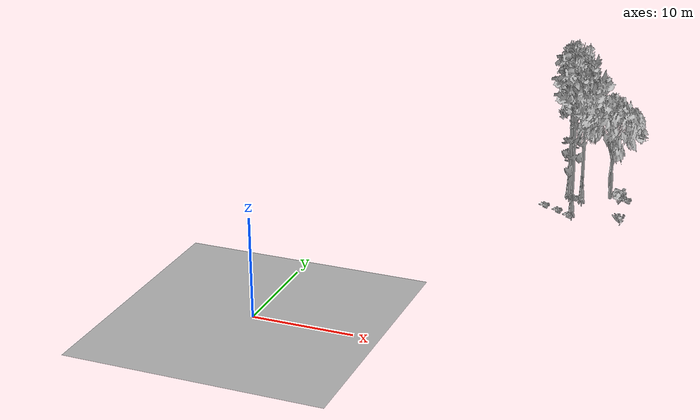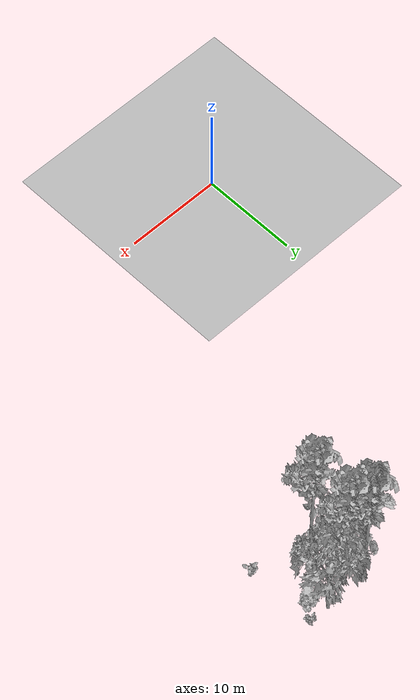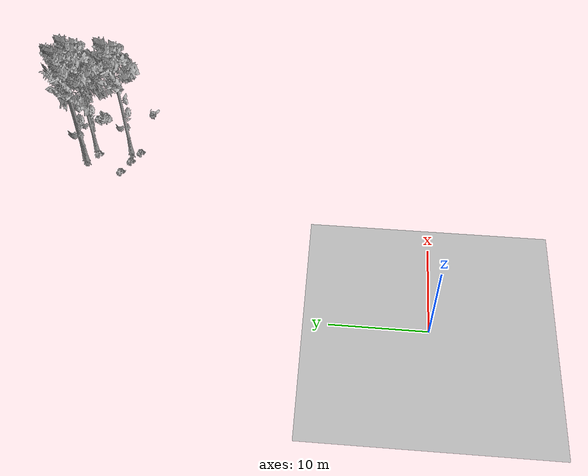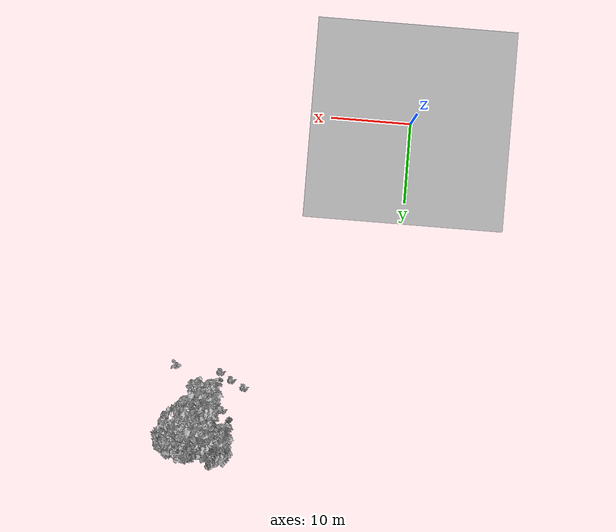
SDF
<sdf version="1.7">
 <world name="default">
  <model name="ground_plane">
   <static>1</static>
   <link name="link">
    <collision name="collision">
     <pose>-50 0 0 0 -0 0</pose>
     <geometry><plane><normal>0 0 1</normal><size>80 80</size></plane></geometry>
     <surface><contact><ode><min_depth>0.01</min_depth><max_vel>0</max_vel></ode></contact></surface>
    </collision>
    <visual name="grass">
     <cast_shadows>0</cast_shadows>
     <geometry>
      <mesh>
       <scale>0.46714285714285714 0.46714285714285714 0.1</scale>
       <uri>file://grass_plane/meshes/grass_plane.dae</uri>
      </mesh>
     </geometry>
    </visual>
   </link>
  </model>
  <model name="Tree 23">
   <static>1</static>
   <pose>24.29537606938836 39.25126462083037 0 1.57079 -0 0</pose>
   <link name="link">
    <collision name="collision">
     <geometry><mesh><scale>3.5 5 3.5</scale><uri>model://tree_2/meshes/tree_2.obj</uri></mesh></geometry>
    </collision>
    <visual name="visual">
     <geometry><mesh><scale>3.5 5 3.5</scale><uri>model://tree_2/meshes/tree_2.obj</uri></mesh></geometry>
    </visual>
   </link>
  </model>
  <model name="Tree 184">
   <static>1</static>
   <pose>21.432016057616764 38.21644859500114 0 1.57079 -0 0</pose>
   <link name="link">
    <collision name="collision">
     <geometry><mesh><scale>3.5 5 3.5</scale><uri>model://tree_9/meshes/tree_9.obj</uri></mesh></geometry>
    </collision>
    <visual name="visual">
     <geometry><mesh><scale>3.5 5 3.5</scale><uri>model://tree_9/meshes/tree_9.obj</uri></mesh></geometry>
    </visual>
   </link>
  </model>
  <model name="Tree 328">
   <static>1</static>
   <pose>21.3664355230679 34.13844430893856 0 1.57079 -0 0</pose>
   <link name="link">
    <collision name="collision">
     <geometry><mesh><scale>3.5 5 3.5</scale><uri>model://tree_9/meshes/tree_9.obj</uri></mesh></geometry>
    </collision>
    <visual name="visual">
     <geometry><mesh><scale>3.5 5 3.5</scale><uri>model://tree_9/meshes/tree_9.obj</uri></mesh></geometry>
    </visual>
   </link>
  </model>
  <model name="Tree 483">
   <static>1</static>
   <pose>19.959663639246173 39.25178447112718 0 1.57079 -0 0</pose>
   <link name="link">
    <collision name="collision">
     <geometry><mesh><scale>3.5 5 3.5</scale><uri>model://tree_9/meshes/tree_9.obj</uri></mesh></geometry>
    </collision>
    <visual name="visual">
     <geometry><mesh><scale>3.5 5 3.5</scale><uri>model://tree_9/meshes/tree_9.obj</uri></mesh></geometry>
    </visual>
   </link>
  </model>
  <model name="Tree 616">
   <static>1</static>
   <pose>19.785731320624436 39.001435138869 0 1.57079 -0 0</pose>
   <link name="link">
    <collision name="collision">
     <geometry><mesh><scale>3.5 5 3.5</scale><uri>model://tree_9/meshes/tree_9.obj</uri></mesh></geometry>
    </collision>
    <visual name="visual">
     <geometry><mesh><scale>3.5 5 3.5</scale><uri>model://tree_9/meshes/tree_9.obj</uri></mesh></geometry>
    </visual>
   </link>
  </model>
  <model name="Bush 106">
   <static>1</static>
   <pose>26.288432304607156 39.07287833909605 0 1.57079 -0 0</pose>
   <link name="link">
    <collision name="collision">
     <geometry><mesh><scale>2 2 2</scale><uri>model://bush_2/meshes/bush_2.obj</uri></mesh></geometry>
     <surface><contact><collide_without_contact>false</collide_without_contact></contact></surface>
    </collision>
    <visual name="visual">
     <geometry><mesh><scale>2 2 2</scale><uri>model://bush_2/meshes/bush_2.obj</uri></mesh></geometry>
    </visual>
   </link>
  </model>
  <model name="Bush 107">
   <static>1</static>
   <pose>21.29923351570811 33.019262154786574 0 1.57079 -0 0</pose>
   <link name="link">
    <collision name="collision">
     <geometry><mesh><scale>2 2 2</scale><uri>model://bush_2/meshes/bush_2.obj</uri></mesh></geometry>
     <surface><contact><collide_without_contact>false</collide_without_contact></contact></surface>
    </collision>
    <visual name="visual">
     <geometry><mesh><scale>2 2 2</scale><uri>model://bush_2/meshes/bush_2.obj</uri></mesh></geometry>
    </visual>
   </link>
  </model>
  <model name="Bush 129">
   <static>1</static>
   <pose>18.228866837734444 34.75922046700265 0 1.57079 -0 0</pose>
   <link name="link">
    <collision name="collision">
     <geometry><mesh><scale>2 2 2</scale><uri>model://bush_2/meshes/bush_2.obj</uri></mesh></geometry>
     <surface><contact><collide_without_contact>false</collide_without_contact></contact></surface>
    </collision>
    <visual name="visual">
     <geometry><mesh><scale>2 2 2</scale><uri>model://bush_2/meshes/bush_2.obj</uri></mesh></geometry>
    </visual>
   </link>
  </model>
  <model name="Bush 182">
   <static>1</static>
   <pose>25.609201511841334 37.95173434594879 0 1.57079 -0 0</pose>
   <link name="link">
    <collision name="collision">
     <geometry><mesh><scale>2 2 2</scale><uri>model://bush_1/meshes/bush_1.obj</uri></mesh></geometry>
     <surface><contact><collide_without_contact>false</collide_without_contact></contact></surface>
    </collision>
    <visual name="visual">
     <geometry><mesh><scale>2 2 2</scale><uri>model://bush_1/meshes/bush_1.obj</uri></mesh></geometry>
    </visual>
   </link>
  </model>
  <model name="Bush 257">
   <static>1</static>
   <pose>26.980700640758556 32.49612637959703 0 1.57079 -0 0</pose>
   <link name="link">
    <collision name="collision">
     <geometry><mesh><scale>2 2 2</scale><uri>model://bush_0/meshes/bush_0.obj</uri></mesh></geometry>
     <surface><contact><collide_without_contact>false</collide_without_contact></contact></surface>
    </collision>
    <visual name="visual">
     <geometry><mesh><scale>2 2 2</scale><uri>model://bush_0/meshes/bush_0.obj</uri></mesh></geometry>
    </visual>
   </link>
  </model>
  <model name="Bush 480">
   <static>1</static>
   <pose>19.885082330757783 33.92524139750034 0 1.57079 -0 0</pose>
   <link name="link">
    <collision name="collision">
     <geometry><mesh><scale>2 2 2</scale><uri>model://bush_2/meshes/bush_2.obj</uri></mesh></geometry>
     <surface><contact><collide_without_contact>false</collide_without_contact></contact></surface>
    </collision>
    <visual name="visual">
     <geometry><mesh><scale>2 2 2</scale><uri>model://bush_2/meshes/bush_2.obj</uri></mesh></geometry>
    </visual>
   </link>
  </model>
  <model name="Bush 567">
   <static>1</static>
   <pose>20.70582440097884 37.79043675425011 0 1.57079 -0 0</pose>
   <link name="link">
    <collision name="collision">
     <geometry><mesh><scale>2 2 2</scale><uri>model://bush_2/meshes/bush_2.obj</uri></mesh></geometry>
     <surface><contact><collide_without_contact>false</collide_without_contact></contact></surface>
    </collision>
    <visual name="visual">
     <geometry><mesh><scale>2 2 2</scale><uri>model://bush_2/meshes/bush_2.obj</uri></mesh></geometry>
    </visual>
   </link>
  </model>
 </world>
</sdf>
